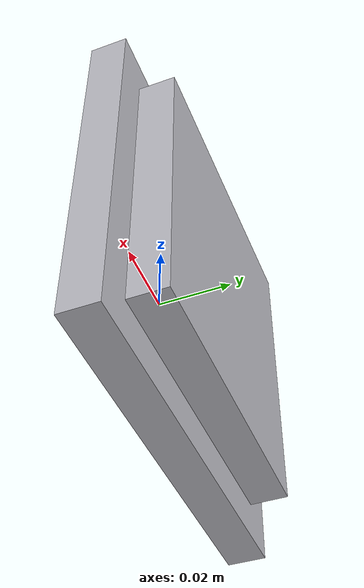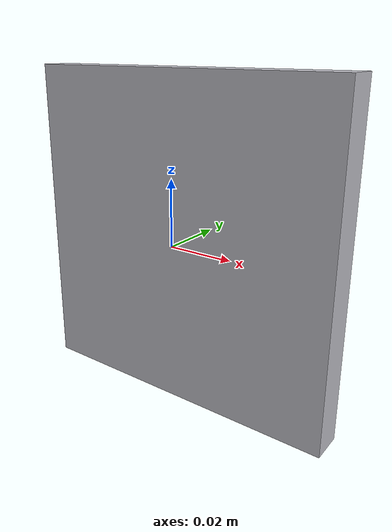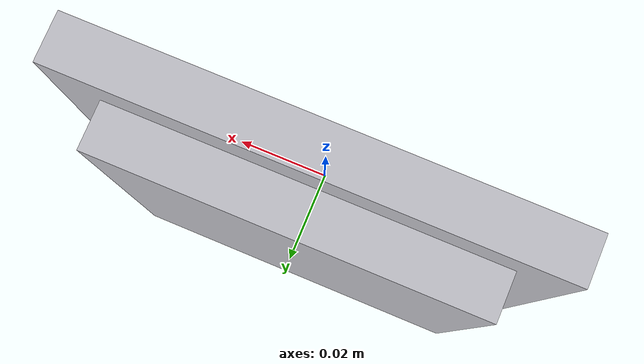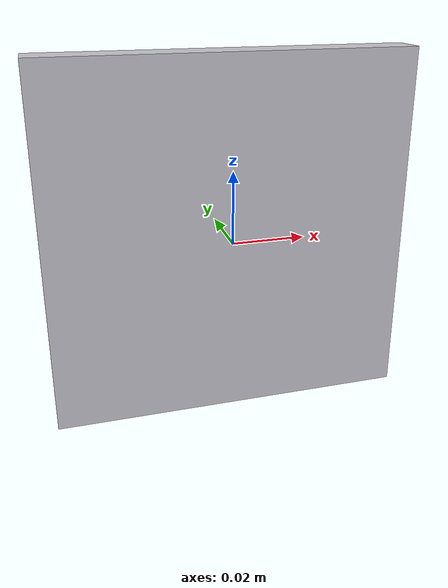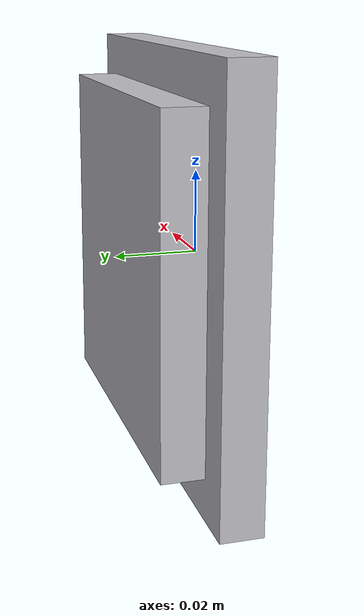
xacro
<?xml version="1.0" ?>
<robot name="URDF" xmlns:xacro="http://www.ros.org/wiki/xacro">

<xacro:include filename="$(find sub_description)/urdf/materials.xacro" />
<xacro:include filename="$(find sub_description)/urdf/URDF.trans" />
<xacro:include filename="$(find sub_description)/urdf/URDF.gazebo" />
<link name="base_link">
  <inertial>
    <origin xyz="0.0 0.005 0.0" rpy="0 0 0"/>
    <mass value="0.7849999999999999"/>
    <inertia ixx="0.000661" iyy="0.001308" izz="0.000661" ixy="0.0" iyz="0.0" ixz="0.0"/>
  </inertial>
  <visual>
    <origin xyz="0 0 0" rpy="0 0 0"/>
    <geometry>
      <mesh filename="file://$(find sub_description)/meshes/base_link.stl" scale="0.001 0.001 0.001"/>
    </geometry>
    <material name="silver"/>
  </visual>
  <collision>
    <origin xyz="0 0 0" rpy="0 0 0"/>
    <geometry>
      <mesh filename="file://$(find sub_description)/meshes/base_link.stl" scale="0.001 0.001 0.001"/>
    </geometry>
  </collision>
</link>

<link name="top_1">
  <inertial>
    <origin xyz="0.0 0.004999999999999999 0.0" rpy="0 0 0"/>
    <mass value="0.5024"/>
    <inertia ixx="0.000272" iyy="0.000536" izz="0.000272" ixy="0.0" iyz="0.0" ixz="0.0"/>
  </inertial>
  <visual>
    <origin xyz="-0.0 -0.01 -0.0" rpy="0 0 0"/>
    <geometry>
      <mesh filename="file://$(find sub_description)/meshes/top_1.stl" scale="0.001 0.001 0.001"/>
    </geometry>
    <material name="silver"/>
  </visual>
  <collision>
    <origin xyz="-0.0 -0.01 -0.0" rpy="0 0 0"/>
    <geometry>
      <mesh filename="file://$(find sub_description)/meshes/top_1.stl" scale="0.001 0.001 0.001"/>
    </geometry>
  </collision>
</link>

<joint name="Revolute 3" type="continuous">
  <origin xyz="0.0 0.01 0.0" rpy="0 0 0"/>
  <parent link="base_link"/>
  <child link="top_1"/>
  <axis xyz="0.0 1.0 0.0"/>
</joint>

</robot>

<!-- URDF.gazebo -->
<robot name="URDF" xmlns:xacro="http://www.ros.org/wiki/xacro" >

<xacro:property name="body_color" value="Gazebo/Silver" />

<gazebo>
  <plugin name="control" filename="libgazebo_ros_control.so"/>
</gazebo>
<gazebo reference="base_link">
  <material>${body_color}</material>
  <mu1>0.2</mu1>
  <mu2>0.2</mu2>
  <self_collide>true</self_collide>
  <gravity>true</gravity>
</gazebo>

<gazebo reference="top_1">
  <material>${body_color}</material>
  <mu1>0.2</mu1>
  <mu2>0.2</mu2>
  <self_collide>true</self_collide>
</gazebo>

</robot>
